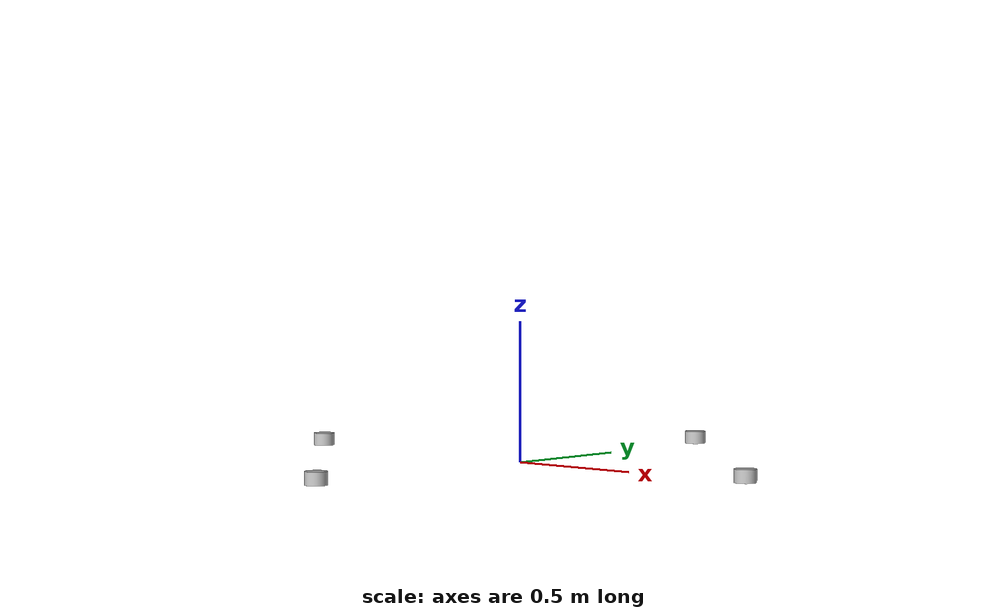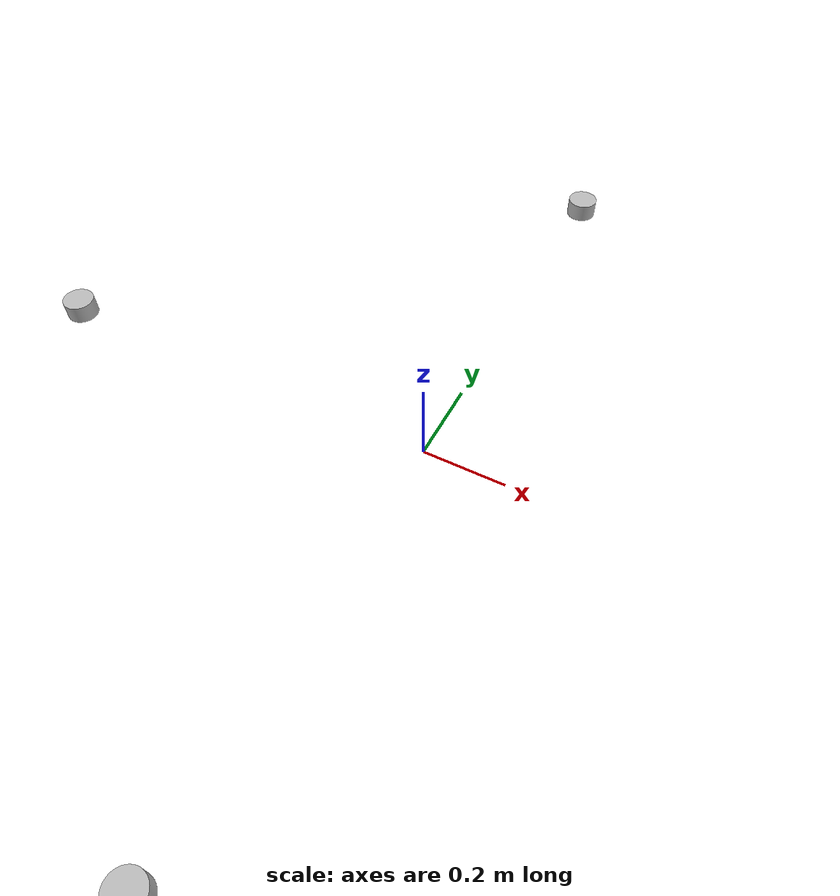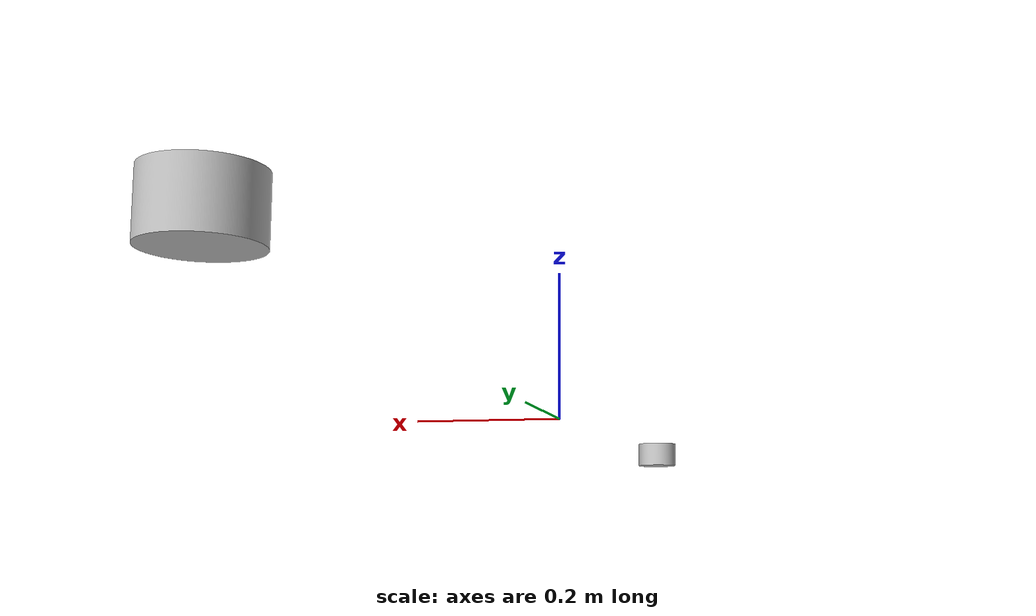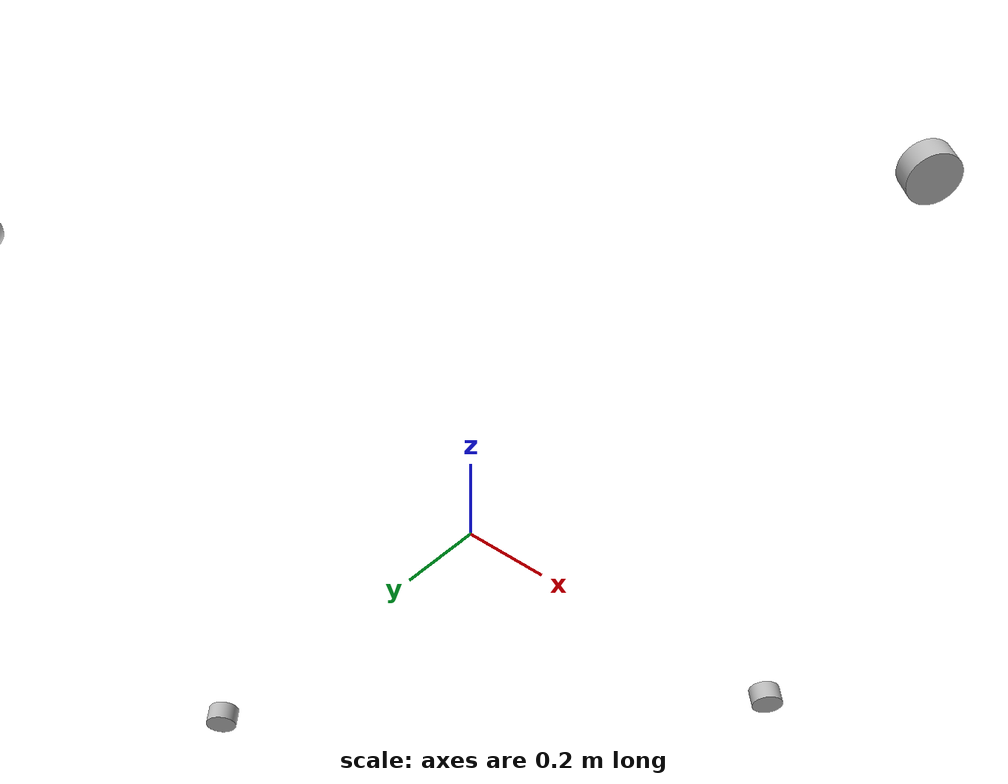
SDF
<?xml version='1.0'?>
<sdf version='1.6'>
    <model name='spacetels'>
      <pose frame=''>0 0 0 0 -0 0</pose>
      <static>1</static>
      <link name='link'>
        <gravity>0</gravity>
        <collision name='collision'>
          <geometry>
            <mesh>
              <uri>model://spacetels/meshes/spacetels.stl</uri>
            </mesh>
          </geometry>
          <max_contacts>10</max_contacts>
          <surface>
            <friction>
              <ode>
                <mu>50.000000</mu>
                <mu2>50.000000</mu2>
                <fdir1>0.000000 0.000000 0.000000</fdir1>
                <slip1>0.000000</slip1>
                <slip2>0.000000</slip2>
              </ode>
            </friction>
            <bounce>
              <restitution_coefficient>0.000000</restitution_coefficient>
              <threshold>100000.000000</threshold>
            </bounce>
            <contact>
              <ode>
                <soft_cfm>0.000000</soft_cfm>
                <soft_erp>0.200000</soft_erp>
                <kp>1000000000.000000</kp>
                <kd>1.000000</kd>
                <max_vel>100.000000</max_vel>
                <min_depth>0.001000</min_depth>
              </ode>
            </contact>
          </surface>
        </collision>
        <visual name='visual'>
          <geometry>
            <mesh>
              <uri>model://spacetels/meshes/spacetels.stl</uri>
            </mesh>
          </geometry>
        </visual>
        <self_collide>0</self_collide>
        <enable_wind>0</enable_wind>
        <kinematic>0</kinematic>
      </link>
      <allow_auto_disable>1</allow_auto_disable>
    </model>
</sdf>
